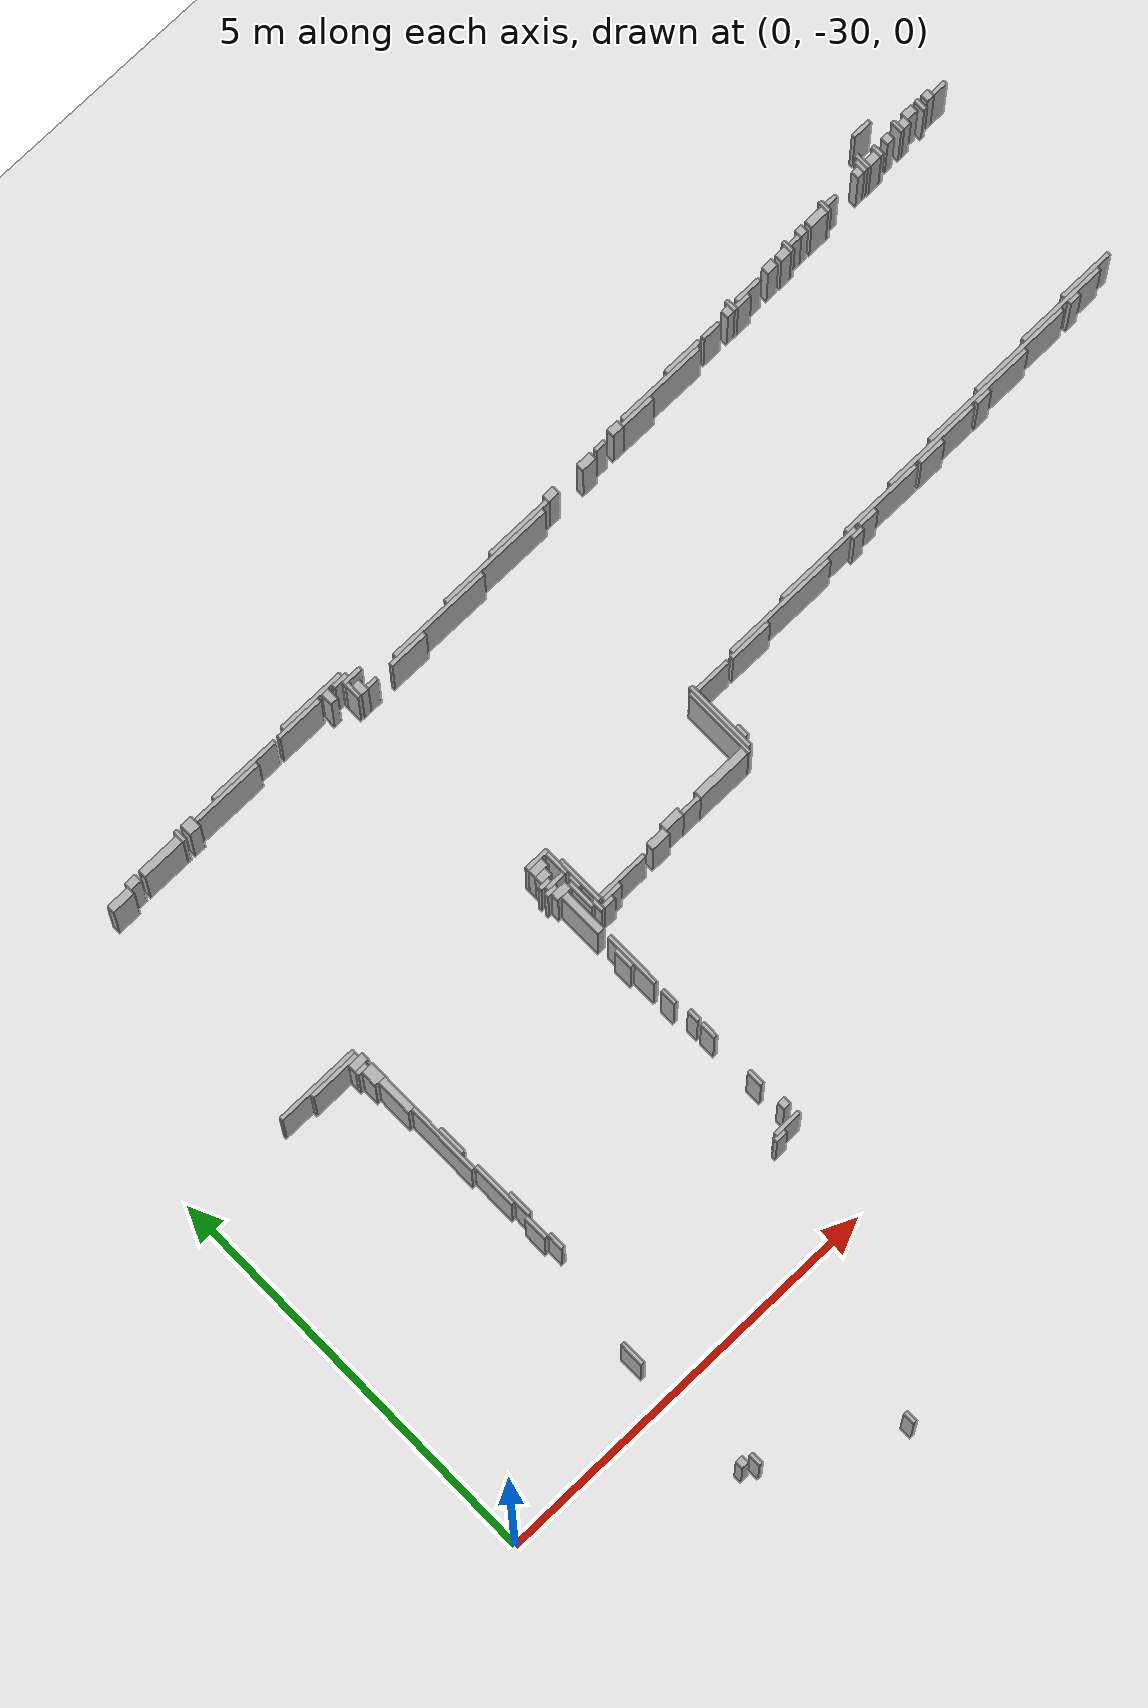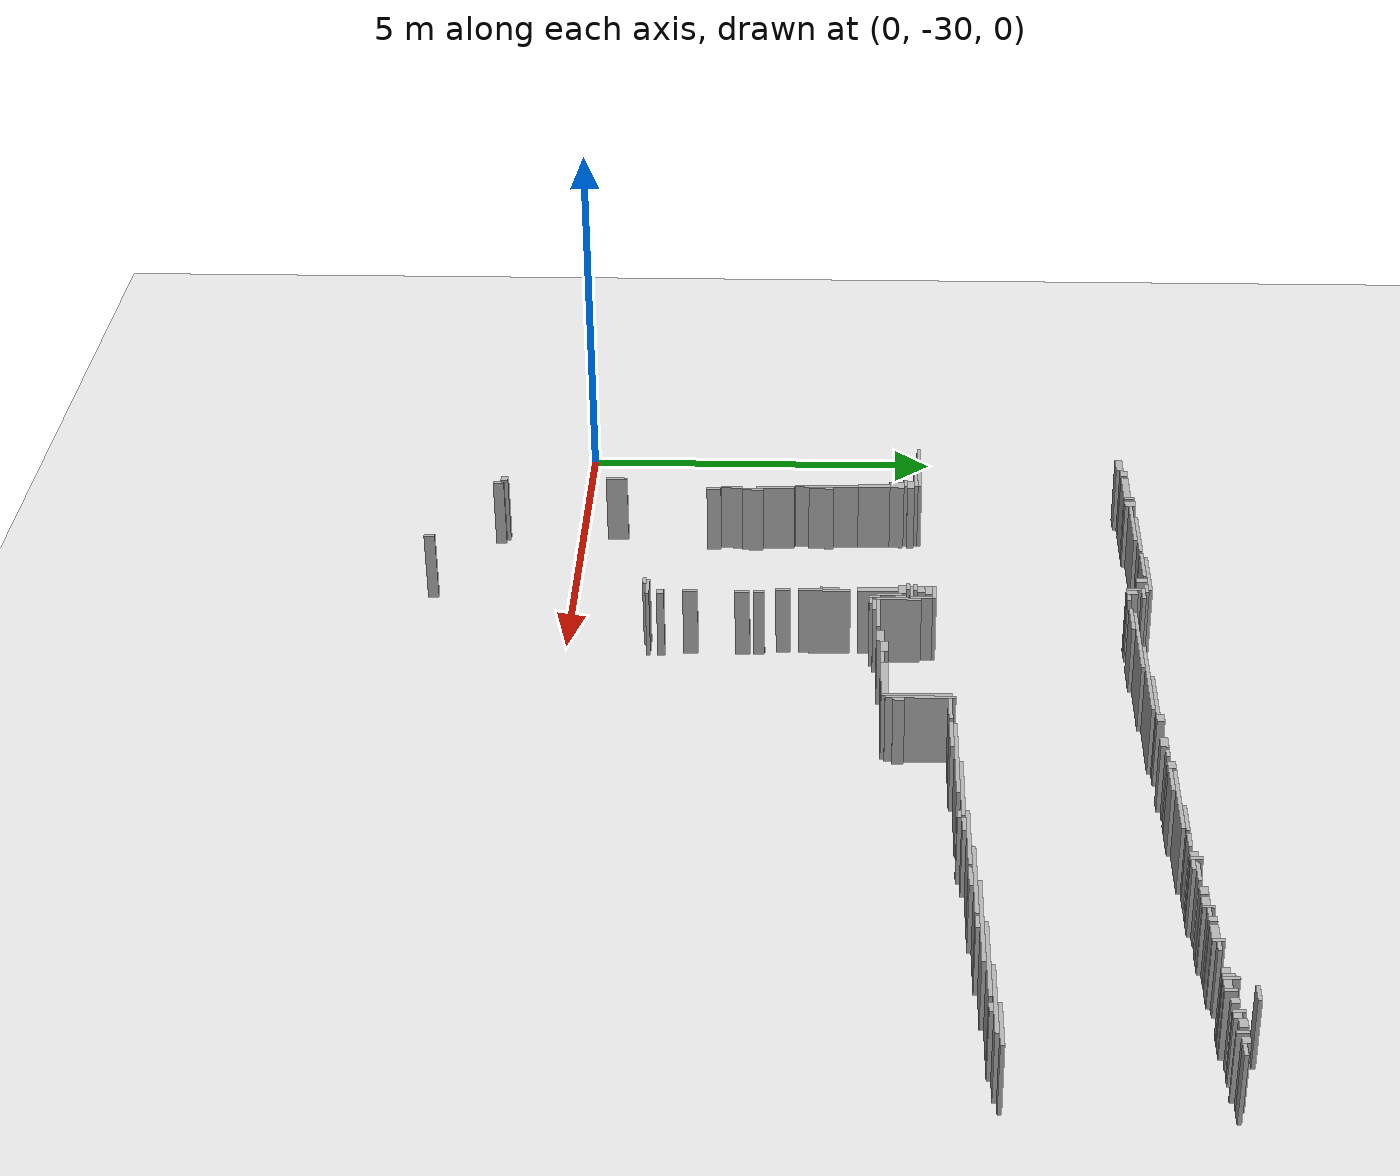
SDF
<sdf version="1.8">
 <world name="building">
  <model name="ground_plane">
   <static>true</static>
   <link name="link">
    <collision name="c"><geometry><plane><normal>0 0 1</normal><size>200 200</size></plane></geometry></collision>
    <visual name="v">
     <geometry><plane><normal>0 0 1</normal><size>200 200</size></plane></geometry>
     <material><ambient>0.9 0.9 0.9 1</ambient><diffuse>0.9 0.9 0.9 1</diffuse></material>
    </visual>
   </link>
  </model>
  <model name="walls">
   <static>true</static>
   <link name="wall_762">
    <pose>13.225 -21.625 0.500 0 0 0</pose>
    <collision name="c"><geometry><box><size>0.250 0.050 1.000</size></box></geometry></collision>
    <visual name="v">
     <geometry><box><size>0.250 0.050 1.000</size></box></geometry>
     <material><ambient>0.6 0.6 0.6 1</ambient><diffuse>0.7 0.7 0.7 1</diffuse></material>
    </visual>
   </link>
   <link name="wall_768">
    <pose>12.975 -21.900 0.500 0 0 0</pose>
    <collision name="c"><geometry><box><size>0.050 0.200 1.000</size></box></geometry></collision>
    <visual name="v">
     <geometry><box><size>0.050 0.200 1.000</size></box></geometry>
     <material><ambient>0.6 0.6 0.6 1</ambient><diffuse>0.7 0.7 0.7 1</diffuse></material>
    </visual>
   </link>
   <link name="wall_769">
    <pose>13.525 -21.875 0.500 0 0 0</pose>
    <collision name="c"><geometry><box><size>0.050 0.150 1.000</size></box></geometry></collision>
    <visual name="v">
     <geometry><box><size>0.050 0.150 1.000</size></box></geometry>
     <material><ambient>0.6 0.6 0.6 1</ambient><diffuse>0.7 0.7 0.7 1</diffuse></material>
    </visual>
   </link>
   <link name="wall_770">
    <pose>13.725 -21.850 0.500 0 0 0</pose>
    <collision name="c"><geometry><box><size>0.150 0.100 1.000</size></box></geometry></collision>
    <visual name="v">
     <geometry><box><size>0.150 0.100 1.000</size></box></geometry>
     <material><ambient>0.6 0.6 0.6 1</ambient><diffuse>0.7 0.7 0.7 1</diffuse></material>
    </visual>
   </link>
   <link name="wall_771">
    <pose>13.875 -21.875 0.500 0 0 0</pose>
    <collision name="c"><geometry><box><size>0.050 0.150 1.000</size></box></geometry></collision>
    <visual name="v">
     <geometry><box><size>0.050 0.150 1.000</size></box></geometry>
     <material><ambient>0.6 0.6 0.6 1</ambient><diffuse>0.7 0.7 0.7 1</diffuse></material>
    </visual>
   </link>
   <link name="wall_772">
    <pose>14.000 -21.850 0.500 0 0 0</pose>
    <collision name="c"><geometry><box><size>0.100 0.100 1.000</size></box></geometry></collision>
    <visual name="v">
     <geometry><box><size>0.100 0.100 1.000</size></box></geometry>
     <material><ambient>0.6 0.6 0.6 1</ambient><diffuse>0.7 0.7 0.7 1</diffuse></material>
    </visual>
   </link>
   <link name="wall_774">
    <pose>12.925 -21.925 0.500 0 0 0</pose>
    <collision name="c"><geometry><box><size>0.050 0.150 1.000</size></box></geometry></collision>
    <visual name="v">
     <geometry><box><size>0.050 0.150 1.000</size></box></geometry>
     <material><ambient>0.6 0.6 0.6 1</ambient><diffuse>0.7 0.7 0.7 1</diffuse></material>
    </visual>
   </link>
   <link name="wall_775">
    <pose>13.175 -21.925 0.500 0 0 0</pose>
    <collision name="c"><geometry><box><size>0.050 0.150 1.000</size></box></geometry></collision>
    <visual name="v">
     <geometry><box><size>0.050 0.150 1.000</size></box></geometry>
     <material><ambient>0.6 0.6 0.6 1</ambient><diffuse>0.7 0.7 0.7 1</diffuse></material>
    </visual>
   </link>
   <link name="wall_776">
    <pose>13.350 -21.900 0.500 0 0 0</pose>
    <collision name="c"><geometry><box><size>0.100 0.100 1.000</size></box></geometry></collision>
    <visual name="v">
     <geometry><box><size>0.100 0.100 1.000</size></box></geometry>
     <material><ambient>0.6 0.6 0.6 1</ambient><diffuse>0.7 0.7 0.7 1</diffuse></material>
    </visual>
   </link>
   <link name="wall_777">
    <pose>13.600 -21.900 0.500 0 0 0</pose>
    <collision name="c"><geometry><box><size>0.100 0.100 1.000</size></box></geometry></collision>
    <visual name="v">
     <geometry><box><size>0.100 0.100 1.000</size></box></geometry>
     <material><ambient>0.6 0.6 0.6 1</ambient><diffuse>0.7 0.7 0.7 1</diffuse></material>
    </visual>
   </link>
   <link name="wall_778">
    <pose>14.150 -21.875 0.500 0 0 0</pose>
    <collision name="c"><geometry><box><size>0.200 0.050 1.000</size></box></geometry></collision>
    <visual name="v">
     <geometry><box><size>0.200 0.050 1.000</size></box></geometry>
     <material><ambient>0.6 0.6 0.6 1</ambient><diffuse>0.7 0.7 0.7 1</diffuse></material>
    </visual>
   </link>
   <link name="wall_780">
    <pose>12.325 -21.975 0.500 0 0 0</pose>
    <collision name="c"><geometry><box><size>0.050 0.150 1.000</size></box></geometry></collision>
    <visual name="v">
     <geometry><box><size>0.050 0.150 1.000</size></box></geometry>
     <material><ambient>0.6 0.6 0.6 1</ambient><diffuse>0.7 0.7 0.7 1</diffuse></material>
    </visual>
   </link>
   <link name="wall_781">
    <pose>12.850 -21.950 0.500 0 0 0</pose>
    <collision name="c"><geometry><box><size>0.100 0.100 1.000</size></box></geometry></collision>
    <visual name="v">
     <geometry><box><size>0.100 0.100 1.000</size></box></geometry>
     <material><ambient>0.6 0.6 0.6 1</ambient><diffuse>0.7 0.7 0.7 1</diffuse></material>
    </visual>
   </link>
   <link name="wall_782">
    <pose>13.075 -21.950 0.500 0 0 0</pose>
    <collision name="c"><geometry><box><size>0.150 0.100 1.000</size></box></geometry></collision>
    <visual name="v">
     <geometry><box><size>0.150 0.100 1.000</size></box></geometry>
     <material><ambient>0.6 0.6 0.6 1</ambient><diffuse>0.7 0.7 0.7 1</diffuse></material>
    </visual>
   </link>
   <link name="wall_783">
    <pose>11.725 -22.025 0.500 0 0 0</pose>
    <collision name="c"><geometry><box><size>0.050 0.150 1.000</size></box></geometry></collision>
    <visual name="v">
     <geometry><box><size>0.050 0.150 1.000</size></box></geometry>
     <material><ambient>0.6 0.6 0.6 1</ambient><diffuse>0.7 0.7 0.7 1</diffuse></material>
    </visual>
   </link>
   <link name="wall_784">
    <pose>11.950 -22.000 0.500 0 0 0</pose>
    <collision name="c"><geometry><box><size>0.100 0.100 1.000</size></box></geometry></collision>
    <visual name="v">
     <geometry><box><size>0.100 0.100 1.000</size></box></geometry>
     <material><ambient>0.6 0.6 0.6 1</ambient><diffuse>0.7 0.7 0.7 1</diffuse></material>
    </visual>
   </link>
   <link name="wall_785">
    <pose>12.175 -22.000 0.500 0 0 0</pose>
    <collision name="c"><geometry><box><size>0.250 0.100 1.000</size></box></geometry></collision>
    <visual name="v">
     <geometry><box><size>0.250 0.100 1.000</size></box></geometry>
     <material><ambient>0.6 0.6 0.6 1</ambient><diffuse>0.7 0.7 0.7 1</diffuse></material>
    </visual>
   </link>
   <link name="wall_786">
    <pose>12.425 -21.975 0.500 0 0 0</pose>
    <collision name="c"><geometry><box><size>0.150 0.050 1.000</size></box></geometry></collision>
    <visual name="v">
     <geometry><box><size>0.150 0.050 1.000</size></box></geometry>
     <material><ambient>0.6 0.6 0.6 1</ambient><diffuse>0.7 0.7 0.7 1</diffuse></material>
    </visual>
   </link>
   <link name="wall_787">
    <pose>10.825 -22.075 0.500 0 0 0</pose>
    <collision name="c"><geometry><box><size>0.050 0.150 1.000</size></box></geometry></collision>
    <visual name="v">
     <geometry><box><size>0.050 0.150 1.000</size></box></geometry>
     <material><ambient>0.6 0.6 0.6 1</ambient><diffuse>0.7 0.7 0.7 1</diffuse></material>
    </visual>
   </link>
   <link name="wall_788">
    <pose>11.425 -22.050 0.500 0 0 0</pose>
    <collision name="c"><geometry><box><size>0.150 0.100 1.000</size></box></geometry></collision>
    <visual name="v">
     <geometry><box><size>0.150 0.100 1.000</size></box></geometry>
     <material><ambient>0.6 0.6 0.6 1</ambient><diffuse>0.7 0.7 0.7 1</diffuse></material>
    </visual>
   </link>
   <link name="wall_789">
    <pose>11.625 -22.050 0.500 0 0 0</pose>
    <collision name="c"><geometry><box><size>0.150 0.100 1.000</size></box></geometry></collision>
    <visual name="v">
     <geometry><box><size>0.150 0.100 1.000</size></box></geometry>
     <material><ambient>0.6 0.6 0.6 1</ambient><diffuse>0.7 0.7 0.7 1</diffuse></material>
    </visual>
   </link>
   <link name="wall_790">
    <pose>11.825 -22.025 0.500 0 0 0</pose>
    <collision name="c"><geometry><box><size>0.150 0.050 1.000</size></box></geometry></collision>
    <visual name="v">
     <geometry><box><size>0.150 0.050 1.000</size></box></geometry>
     <material><ambient>0.6 0.6 0.6 1</ambient><diffuse>0.7 0.7 0.7 1</diffuse></material>
    </visual>
   </link>
   <link name="wall_793">
    <pose>10.750 -22.100 0.500 0 0 0</pose>
    <collision name="c"><geometry><box><size>0.100 0.100 1.000</size></box></geometry></collision>
    <visual name="v">
     <geometry><box><size>0.100 0.100 1.000</size></box></geometry>
     <material><ambient>0.6 0.6 0.6 1</ambient><diffuse>0.7 0.7 0.7 1</diffuse></material>
    </visual>
   </link>
   <link name="wall_794">
    <pose>11.075 -22.075 0.500 0 0 0</pose>
    <collision name="c"><geometry><box><size>0.350 0.050 1.000</size></box></geometry></collision>
    <visual name="v">
     <geometry><box><size>0.350 0.050 1.000</size></box></geometry>
     <material><ambient>0.6 0.6 0.6 1</ambient><diffuse>0.7 0.7 0.7 1</diffuse></material>
    </visual>
   </link>
   <link name="wall_796">
    <pose>4.575 -22.125 0.500 0 0 0</pose>
    <collision name="c"><geometry><box><size>0.850 0.050 1.000</size></box></geometry></collision>
    <visual name="v">
     <geometry><box><size>0.850 0.050 1.000</size></box></geometry>
     <material><ambient>0.6 0.6 0.6 1</ambient><diffuse>0.7 0.7 0.7 1</diffuse></material>
    </visual>
   </link>
   <link name="wall_797">
    <pose>10.050 -22.125 0.500 0 0 0</pose>
    <collision name="c"><geometry><box><size>0.500 0.050 1.000</size></box></geometry></collision>
    <visual name="v">
     <geometry><box><size>0.500 0.050 1.000</size></box></geometry>
     <material><ambient>0.6 0.6 0.6 1</ambient><diffuse>0.7 0.7 0.7 1</diffuse></material>
    </visual>
   </link>
   <link name="wall_798">
    <pose>10.475 -22.125 0.500 0 0 0</pose>
    <collision name="c"><geometry><box><size>0.250 0.050 1.000</size></box></geometry></collision>
    <visual name="v">
     <geometry><box><size>0.250 0.050 1.000</size></box></geometry>
     <material><ambient>0.6 0.6 0.6 1</ambient><diffuse>0.7 0.7 0.7 1</diffuse></material>
    </visual>
   </link>
   <link name="wall_799">
    <pose>10.950 -22.125 0.500 0 0 0</pose>
    <collision name="c"><geometry><box><size>0.200 0.050 1.000</size></box></geometry></collision>
    <visual name="v">
     <geometry><box><size>0.200 0.050 1.000</size></box></geometry>
     <material><ambient>0.6 0.6 0.6 1</ambient><diffuse>0.7 0.7 0.7 1</diffuse></material>
    </visual>
   </link>
   <link name="wall_805">
    <pose>2.575 -22.225 0.500 0 0 0</pose>
    <collision name="c"><geometry><box><size>0.050 0.150 1.000</size></box></geometry></collision>
    <visual name="v">
     <geometry><box><size>0.050 0.150 1.000</size></box></geometry>
     <material><ambient>0.6 0.6 0.6 1</ambient><diffuse>0.7 0.7 0.7 1</diffuse></material>
    </visual>
   </link>
   <link name="wall_806">
    <pose>2.725 -22.225 0.500 0 0 0</pose>
    <collision name="c"><geometry><box><size>0.150 0.150 1.000</size></box></geometry></collision>
    <visual name="v">
     <geometry><box><size>0.150 0.150 1.000</size></box></geometry>
     <material><ambient>0.6 0.6 0.6 1</ambient><diffuse>0.7 0.7 0.7 1</diffuse></material>
    </visual>
   </link>
   <link name="wall_807">
    <pose>3.550 -22.175 0.500 0 0 0</pose>
    <collision name="c"><geometry><box><size>0.900 0.050 1.000</size></box></geometry></collision>
    <visual name="v">
     <geometry><box><size>0.900 0.050 1.000</size></box></geometry>
     <material><ambient>0.6 0.6 0.6 1</ambient><diffuse>0.7 0.7 0.7 1</diffuse></material>
    </visual>
   </link>
   <link name="wall_808">
    <pose>4.350 -22.175 0.500 0 0 0</pose>
    <collision name="c"><geometry><box><size>0.600 0.050 1.000</size></box></geometry></collision>
    <visual name="v">
     <geometry><box><size>0.600 0.050 1.000</size></box></geometry>
     <material><ambient>0.6 0.6 0.6 1</ambient><diffuse>0.7 0.7 0.7 1</diffuse></material>
    </visual>
   </link>
   <link name="wall_809">
    <pose>4.750 -22.225 0.500 0 0 0</pose>
    <collision name="c"><geometry><box><size>0.100 0.150 1.000</size></box></geometry></collision>
    <visual name="v">
     <geometry><box><size>0.100 0.150 1.000</size></box></geometry>
     <material><ambient>0.6 0.6 0.6 1</ambient><diffuse>0.7 0.7 0.7 1</diffuse></material>
    </visual>
   </link>
   <link name="wall_810">
    <pose>4.950 -22.175 0.500 0 0 0</pose>
    <collision name="c"><geometry><box><size>0.200 0.050 1.000</size></box></geometry></collision>
    <visual name="v">
     <geometry><box><size>0.200 0.050 1.000</size></box></geometry>
     <material><ambient>0.6 0.6 0.6 1</ambient><diffuse>0.7 0.7 0.7 1</diffuse></material>
    </visual>
   </link>
   <link name="wall_811">
    <pose>8.975 -22.200 0.500 0 0 0</pose>
    <collision name="c"><geometry><box><size>0.150 0.100 1.000</size></box></geometry></collision>
    <visual name="v">
     <geometry><box><size>0.150 0.100 1.000</size></box></geometry>
     <material><ambient>0.6 0.6 0.6 1</ambient><diffuse>0.7 0.7 0.7 1</diffuse></material>
    </visual>
   </link>
   <link name="wall_812">
    <pose>9.675 -22.175 0.500 0 0 0</pose>
    <collision name="c"><geometry><box><size>1.150 0.050 1.000</size></box></geometry></collision>
    <visual name="v">
     <geometry><box><size>1.150 0.050 1.000</size></box></geometry>
     <material><ambient>0.6 0.6 0.6 1</ambient><diffuse>0.7 0.7 0.7 1</diffuse></material>
    </visual>
   </link>
   <link name="wall_820">
    <pose>1.875 -22.250 0.500 0 0 0</pose>
    <collision name="c"><geometry><box><size>0.150 0.100 1.000</size></box></geometry></collision>
    <visual name="v">
     <geometry><box><size>0.150 0.100 1.000</size></box></geometry>
     <material><ambient>0.6 0.6 0.6 1</ambient><diffuse>0.7 0.7 0.7 1</diffuse></material>
    </visual>
   </link>
   <link name="wall_821">
    <pose>2.275 -22.250 0.500 0 0 0</pose>
    <collision name="c"><geometry><box><size>0.550 0.100 1.000</size></box></geometry></collision>
    <visual name="v">
     <geometry><box><size>0.550 0.100 1.000</size></box></geometry>
     <material><ambient>0.6 0.6 0.6 1</ambient><diffuse>0.7 0.7 0.7 1</diffuse></material>
    </visual>
   </link>
   <link name="wall_822">
    <pose>3.250 -22.225 0.500 0 0 0</pose>
    <collision name="c"><geometry><box><size>0.900 0.050 1.000</size></box></geometry></collision>
    <visual name="v">
     <geometry><box><size>0.900 0.050 1.000</size></box></geometry>
     <material><ambient>0.6 0.6 0.6 1</ambient><diffuse>0.7 0.7 0.7 1</diffuse></material>
    </visual>
   </link>
   <link name="wall_823">
    <pose>5.075 -22.225 0.500 0 0 0</pose>
    <collision name="c"><geometry><box><size>0.250 0.050 1.000</size></box></geometry></collision>
    <visual name="v">
     <geometry><box><size>0.250 0.050 1.000</size></box></geometry>
     <material><ambient>0.6 0.6 0.6 1</ambient><diffuse>0.7 0.7 0.7 1</diffuse></material>
    </visual>
   </link>
   <link name="wall_824">
    <pose>7.975 -22.250 0.500 0 0 0</pose>
    <collision name="c"><geometry><box><size>0.150 0.100 1.000</size></box></geometry></collision>
    <visual name="v">
     <geometry><box><size>0.150 0.100 1.000</size></box></geometry>
     <material><ambient>0.6 0.6 0.6 1</ambient><diffuse>0.7 0.7 0.7 1</diffuse></material>
    </visual>
   </link>
   <link name="wall_825">
    <pose>8.500 -22.250 0.500 0 0 0</pose>
    <collision name="c"><geometry><box><size>0.200 0.100 1.000</size></box></geometry></collision>
    <visual name="v">
     <geometry><box><size>0.200 0.100 1.000</size></box></geometry>
     <material><ambient>0.6 0.6 0.6 1</ambient><diffuse>0.7 0.7 0.7 1</diffuse></material>
    </visual>
   </link>
   <link name="wall_826">
    <pose>8.725 -22.225 0.500 0 0 0</pose>
    <collision name="c"><geometry><box><size>0.150 0.050 1.000</size></box></geometry></collision>
    <visual name="v">
     <geometry><box><size>0.150 0.050 1.000</size></box></geometry>
     <material><ambient>0.6 0.6 0.6 1</ambient><diffuse>0.7 0.7 0.7 1</diffuse></material>
    </visual>
   </link>
   <link name="wall_827">
    <pose>9.275 -22.225 0.500 0 0 0</pose>
    <collision name="c"><geometry><box><size>0.450 0.050 1.000</size></box></geometry></collision>
    <visual name="v">
     <geometry><box><size>0.450 0.050 1.000</size></box></geometry>
     <material><ambient>0.6 0.6 0.6 1</ambient><diffuse>0.7 0.7 0.7 1</diffuse></material>
    </visual>
   </link>
   <link name="wall_841">
    <pose>1.650 -22.300 0.500 0 0 0</pose>
    <collision name="c"><geometry><box><size>0.300 0.100 1.000</size></box></geometry></collision>
    <visual name="v">
     <geometry><box><size>0.300 0.100 1.000</size></box></geometry>
     <material><ambient>0.6 0.6 0.6 1</ambient><diffuse>0.7 0.7 0.7 1</diffuse></material>
    </visual>
   </link>
   <link name="wall_842">
    <pose>4.975 -22.350 0.500 0 0 0</pose>
    <collision name="c"><geometry><box><size>0.050 0.200 1.000</size></box></geometry></collision>
    <visual name="v">
     <geometry><box><size>0.050 0.200 1.000</size></box></geometry>
     <material><ambient>0.6 0.6 0.6 1</ambient><diffuse>0.7 0.7 0.7 1</diffuse></material>
    </visual>
   </link>
   <link name="wall_843">
    <pose>7.475 -22.275 0.500 0 0 0</pose>
    <collision name="c"><geometry><box><size>0.850 0.050 1.000</size></box></geometry></collision>
    <visual name="v">
     <geometry><box><size>0.850 0.050 1.000</size></box></geometry>
     <material><ambient>0.6 0.6 0.6 1</ambient><diffuse>0.7 0.7 0.7 1</diffuse></material>
    </visual>
   </link>
   <link name="wall_858">
    <pose>5.050 -22.375 0.500 0 0 0</pose>
    <collision name="c"><geometry><box><size>0.100 0.150 1.000</size></box></geometry></collision>
    <visual name="v">
     <geometry><box><size>0.100 0.150 1.000</size></box></geometry>
     <material><ambient>0.6 0.6 0.6 1</ambient><diffuse>0.7 0.7 0.7 1</diffuse></material>
    </visual>
   </link>
   <link name="wall_859">
    <pose>7.075 -22.325 0.500 0 0 0</pose>
    <collision name="c"><geometry><box><size>1.450 0.050 1.000</size></box></geometry></collision>
    <visual name="v">
     <geometry><box><size>1.450 0.050 1.000</size></box></geometry>
     <material><ambient>0.6 0.6 0.6 1</ambient><diffuse>0.7 0.7 0.7 1</diffuse></material>
    </visual>
   </link>
   <link name="wall_874">
    <pose>6.200 -22.375 0.500 0 0 0</pose>
    <collision name="c"><geometry><box><size>1.300 0.050 1.000</size></box></geometry></collision>
    <visual name="v">
     <geometry><box><size>1.300 0.050 1.000</size></box></geometry>
     <material><ambient>0.6 0.6 0.6 1</ambient><diffuse>0.7 0.7 0.7 1</diffuse></material>
    </visual>
   </link>
   <link name="wall_885">
    <pose>5.175 -22.425 0.500 0 0 0</pose>
    <collision name="c"><geometry><box><size>0.150 0.050 1.000</size></box></geometry></collision>
    <visual name="v">
     <geometry><box><size>0.150 0.050 1.000</size></box></geometry>
     <material><ambient>0.6 0.6 0.6 1</ambient><diffuse>0.7 0.7 0.7 1</diffuse></material>
    </visual>
   </link>
   <link name="wall_886">
    <pose>5.700 -22.425 0.500 0 0 0</pose>
    <collision name="c"><geometry><box><size>0.500 0.050 1.000</size></box></geometry></collision>
    <visual name="v">
     <geometry><box><size>0.500 0.050 1.000</size></box></geometry>
     <material><ambient>0.6 0.6 0.6 1</ambient><diffuse>0.7 0.7 0.7 1</diffuse></material>
    </visual>
   </link>
   <link name="wall_956">
    <pose>13.800 -24.475 0.500 0 0 0</pose>
    <collision name="c"><geometry><box><size>0.700 0.050 1.000</size></box></geometry></collision>
    <visual name="v">
     <geometry><box><size>0.700 0.050 1.000</size></box></geometry>
     <material><ambient>0.6 0.6 0.6 1</ambient><diffuse>0.7 0.7 0.7 1</diffuse></material>
    </visual>
   </link>
   <link name="wall_964">
    <pose>13.375 -24.525 0.500 0 0 0</pose>
    <collision name="c"><geometry><box><size>1.150 0.050 1.000</size></box></geometry></collision>
    <visual name="v">
     <geometry><box><size>1.150 0.050 1.000</size></box></geometry>
     <material><ambient>0.6 0.6 0.6 1</ambient><diffuse>0.7 0.7 0.7 1</diffuse></material>
    </visual>
   </link>
   <link name="wall_980">
    <pose>12.700 -24.575 0.500 0 0 0</pose>
    <collision name="c"><geometry><box><size>1.300 0.050 1.000</size></box></geometry></collision>
    <visual name="v">
     <geometry><box><size>1.300 0.050 1.000</size></box></geometry>
     <material><ambient>0.6 0.6 0.6 1</ambient><diffuse>0.7 0.7 0.7 1</diffuse></material>
    </visual>
   </link>
   <link name="wall_981">
    <pose>13.525 -24.575 0.500 0 0 0</pose>
    <collision name="c"><geometry><box><size>0.150 0.050 1.000</size></box></geometry></collision>
    <visual name="v">
     <geometry><box><size>0.150 0.050 1.000</size></box></geometry>
     <material><ambient>0.6 0.6 0.6 1</ambient><diffuse>0.7 0.7 0.7 1</diffuse></material>
    </visual>
   </link>
   <link name="wall_990">
    <pose>12.025 -24.625 0.500 0 0 0</pose>
    <collision name="c"><geometry><box><size>1.450 0.050 1.000</size></box></geometry></collision>
    <visual name="v">
     <geometry><box><size>1.450 0.050 1.000</size></box></geometry>
     <material><ambient>0.6 0.6 0.6 1</ambient><diffuse>0.7 0.7 0.7 1</diffuse></material>
    </visual>
   </link>
   <link name="wall_1001">
    <pose>11.275 -24.675 0.500 0 0 0</pose>
    <collision name="c"><geometry><box><size>1.250 0.050 1.000</size></box></geometry></collision>
    <visual name="v">
     <geometry><box><size>1.250 0.050 1.000</size></box></geometry>
     <material><ambient>0.6 0.6 0.6 1</ambient><diffuse>0.7 0.7 0.7 1</diffuse></material>
    </visual>
   </link>
   <link name="wall_1002">
    <pose>12.050 -24.675 0.500 0 0 0</pose>
    <collision name="c"><geometry><box><size>0.200 0.050 1.000</size></box></geometry></collision>
    <visual name="v">
     <geometry><box><size>0.200 0.050 1.000</size></box></geometry>
     <material><ambient>0.6 0.6 0.6 1</ambient><diffuse>0.7 0.7 0.7 1</diffuse></material>
    </visual>
   </link>
   <link name="wall_1008">
    <pose>10.475 -24.725 0.500 0 0 0</pose>
    <collision name="c"><geometry><box><size>1.050 0.050 1.000</size></box></geometry></collision>
    <visual name="v">
     <geometry><box><size>1.050 0.050 1.000</size></box></geometry>
     <material><ambient>0.6 0.6 0.6 1</ambient><diffuse>0.7 0.7 0.7 1</diffuse></material>
    </visual>
   </link>
   <link name="wall_1009">
    <pose>11.225 -24.725 0.500 0 0 0</pose>
    <collision name="c"><geometry><box><size>0.350 0.050 1.000</size></box></geometry></collision>
    <visual name="v">
     <geometry><box><size>0.350 0.050 1.000</size></box></geometry>
     <material><ambient>0.6 0.6 0.6 1</ambient><diffuse>0.7 0.7 0.7 1</diffuse></material>
    </visual>
   </link>
   <link name="wall_1012">
    <pose>9.500 -24.775 0.500 0 0 0</pose>
    <collision name="c"><geometry><box><size>1.100 0.050 1.000</size></box></geometry></collision>
    <visual name="v">
     <geometry><box><size>1.100 0.050 1.000</size></box></geometry>
     <material><ambient>0.6 0.6 0.6 1</ambient><diffuse>0.7 0.7 0.7 1</diffuse></material>
    </visual>
   </link>
   <link name="wall_1013">
    <pose>10.225 -24.775 0.500 0 0 0</pose>
    <collision name="c"><geometry><box><size>0.250 0.050 1.000</size></box></geometry></collision>
    <visual name="v">
     <geometry><box><size>0.250 0.050 1.000</size></box></geometry>
     <material><ambient>0.6 0.6 0.6 1</ambient><diffuse>0.7 0.7 0.7 1</diffuse></material>
    </visual>
   </link>
   <link name="wall_1014">
    <pose>7.575 -25.250 0.500 0 0 0</pose>
    <collision name="c"><geometry><box><size>0.050 0.900 1.000</size></box></geometry></collision>
    <visual name="v">
     <geometry><box><size>0.050 0.900 1.000</size></box></geometry>
     <material><ambient>0.6 0.6 0.6 1</ambient><diffuse>0.7 0.7 0.7 1</diffuse></material>
    </visual>
   </link>
   <link name="wall_1015">
    <pose>8.875 -24.825 0.500 0 0 0</pose>
    <collision name="c"><geometry><box><size>1.450 0.050 1.000</size></box></geometry></collision>
    <visual name="v">
     <geometry><box><size>1.450 0.050 1.000</size></box></geometry>
     <material><ambient>0.6 0.6 0.6 1</ambient><diffuse>0.7 0.7 0.7 1</diffuse></material>
    </visual>
   </link>
   <link name="wall_1016">
    <pose>10.025 -24.825 0.500 0 0 0</pose>
    <collision name="c"><geometry><box><size>0.150 0.050 1.000</size></box></geometry></collision>
    <visual name="v">
     <geometry><box><size>0.150 0.050 1.000</size></box></geometry>
     <material><ambient>0.6 0.6 0.6 1</ambient><diffuse>0.7 0.7 0.7 1</diffuse></material>
    </visual>
   </link>
   <link name="wall_1019">
    <pose>7.525 -25.300 0.500 0 0 0</pose>
    <collision name="c"><geometry><box><size>0.050 0.900 1.000</size></box></geometry></collision>
    <visual name="v">
     <geometry><box><size>0.050 0.900 1.000</size></box></geometry>
     <material><ambient>0.6 0.6 0.6 1</ambient><diffuse>0.7 0.7 0.7 1</diffuse></material>
    </visual>
   </link>
   <link name="wall_1020">
    <pose>7.825 -24.875 0.500 0 0 0</pose>
    <collision name="c"><geometry><box><size>0.450 0.050 1.000</size></box></geometry></collision>
    <visual name="v">
     <geometry><box><size>0.450 0.050 1.000</size></box></geometry>
     <material><ambient>0.6 0.6 0.6 1</ambient><diffuse>0.7 0.7 0.7 1</diffuse></material>
    </visual>
   </link>
   <link name="wall_1021">
    <pose>8.375 -24.875 0.500 0 0 0</pose>
    <collision name="c"><geometry><box><size>0.550 0.050 1.000</size></box></geometry></collision>
    <visual name="v">
     <geometry><box><size>0.550 0.050 1.000</size></box></geometry>
     <material><ambient>0.6 0.6 0.6 1</ambient><diffuse>0.7 0.7 0.7 1</diffuse></material>
    </visual>
   </link>
   <link name="wall_1027">
    <pose>5.100 -25.025 0.500 0 0 0</pose>
    <collision name="c"><geometry><box><size>0.300 0.050 1.000</size></box></geometry></collision>
    <visual name="v">
     <geometry><box><size>0.300 0.050 1.000</size></box></geometry>
     <material><ambient>0.6 0.6 0.6 1</ambient><diffuse>0.7 0.7 0.7 1</diffuse></material>
    </visual>
   </link>
   <link name="wall_1029">
    <pose>5.050 -25.100 0.500 0 0 0</pose>
    <collision name="c"><geometry><box><size>0.200 0.100 1.000</size></box></geometry></collision>
    <visual name="v">
     <geometry><box><size>0.200 0.100 1.000</size></box></geometry>
     <material><ambient>0.6 0.6 0.6 1</ambient><diffuse>0.7 0.7 0.7 1</diffuse></material>
    </visual>
   </link>
   <link name="wall_1030">
    <pose>5.225 -25.200 0.500 0 0 0</pose>
    <collision name="c"><geometry><box><size>0.050 0.300 1.000</size></box></geometry></collision>
    <visual name="v">
     <geometry><box><size>0.050 0.300 1.000</size></box></geometry>
     <material><ambient>0.6 0.6 0.6 1</ambient><diffuse>0.7 0.7 0.7 1</diffuse></material>
    </visual>
   </link>
   <link name="wall_1034">
    <pose>1.775 -25.175 0.500 0 0 0</pose>
    <collision name="c"><geometry><box><size>1.050 0.050 1.000</size></box></geometry></collision>
    <visual name="v">
     <geometry><box><size>1.050 0.050 1.000</size></box></geometry>
     <material><ambient>0.6 0.6 0.6 1</ambient><diffuse>0.7 0.7 0.7 1</diffuse></material>
    </visual>
   </link>
   <link name="wall_1035">
    <pose>5.025 -25.200 0.500 0 0 0</pose>
    <collision name="c"><geometry><box><size>0.150 0.100 1.000</size></box></geometry></collision>
    <visual name="v">
     <geometry><box><size>0.150 0.100 1.000</size></box></geometry>
     <material><ambient>0.6 0.6 0.6 1</ambient><diffuse>0.7 0.7 0.7 1</diffuse></material>
    </visual>
   </link>
   <link name="wall_1039">
    <pose>1.975 -25.225 0.500 0 0 0</pose>
    <collision name="c"><geometry><box><size>0.650 0.050 1.000</size></box></geometry></collision>
    <visual name="v">
     <geometry><box><size>0.650 0.050 1.000</size></box></geometry>
     <material><ambient>0.6 0.6 0.6 1</ambient><diffuse>0.7 0.7 0.7 1</diffuse></material>
    </visual>
   </link>
   <link name="wall_1040">
    <pose>5.275 -25.500 0.500 0 0 0</pose>
    <collision name="c"><geometry><box><size>0.050 0.600 1.000</size></box></geometry></collision>
    <visual name="v">
     <geometry><box><size>0.050 0.600 1.000</size></box></geometry>
     <material><ambient>0.6 0.6 0.6 1</ambient><diffuse>0.7 0.7 0.7 1</diffuse></material>
    </visual>
   </link>
   <link name="wall_1045">
    <pose>2.250 -25.300 0.500 0 0 0</pose>
    <collision name="c"><geometry><box><size>0.200 0.100 1.000</size></box></geometry></collision>
    <visual name="v">
     <geometry><box><size>0.200 0.100 1.000</size></box></geometry>
     <material><ambient>0.6 0.6 0.6 1</ambient><diffuse>0.7 0.7 0.7 1</diffuse></material>
    </visual>
   </link>
   <link name="wall_1046">
    <pose>4.975 -25.275 0.500 0 0 0</pose>
    <collision name="c"><geometry><box><size>0.150 0.050 1.000</size></box></geometry></collision>
    <visual name="v">
     <geometry><box><size>0.150 0.050 1.000</size></box></geometry>
     <material><ambient>0.6 0.6 0.6 1</ambient><diffuse>0.7 0.7 0.7 1</diffuse></material>
    </visual>
   </link>
   <link name="wall_1050">
    <pose>5.075 -25.325 0.500 0 0 0</pose>
    <collision name="c"><geometry><box><size>0.250 0.050 1.000</size></box></geometry></collision>
    <visual name="v">
     <geometry><box><size>0.250 0.050 1.000</size></box></geometry>
     <material><ambient>0.6 0.6 0.6 1</ambient><diffuse>0.7 0.7 0.7 1</diffuse></material>
    </visual>
   </link>
   <link name="wall_1054">
    <pose>2.225 -25.375 0.500 0 0 0</pose>
    <collision name="c"><geometry><box><size>0.150 0.050 1.000</size></box></geometry></collision>
    <visual name="v">
     <geometry><box><size>0.150 0.050 1.000</size></box></geometry>
     <material><ambient>0.6 0.6 0.6 1</ambient><diffuse>0.7 0.7 0.7 1</diffuse></material>
    </visual>
   </link>
   <link name="wall_1055">
    <pose>4.975 -25.375 0.500 0 0 0</pose>
    <collision name="c"><geometry><box><size>0.150 0.050 1.000</size></box></geometry></collision>
    <visual name="v">
     <geometry><box><size>0.150 0.050 1.000</size></box></geometry>
     <material><ambient>0.6 0.6 0.6 1</ambient><diffuse>0.7 0.7 0.7 1</diffuse></material>
    </visual>
   </link>
   <link name="wall_1058">
    <pose>2.275 -25.500 0.500 0 0 0</pose>
    <collision name="c"><geometry><box><size>0.150 0.200 1.000</size></box></geometry></collision>
    <visual name="v">
     <geometry><box><size>0.150 0.200 1.000</size></box></geometry>
     <material><ambient>0.6 0.6 0.6 1</ambient><diffuse>0.7 0.7 0.7 1</diffuse></material>
    </visual>
   </link>
   <link name="wall_1059">
    <pose>5.050 -25.450 0.500 0 0 0</pose>
    <collision name="c"><geometry><box><size>0.200 0.100 1.000</size></box></geometry></collision>
    <visual name="v">
     <geometry><box><size>0.200 0.100 1.000</size></box></geometry>
     <material><ambient>0.6 0.6 0.6 1</ambient><diffuse>0.7 0.7 0.7 1</diffuse></material>
    </visual>
   </link>
   <link name="wall_1060">
    <pose>5.225 -25.475 0.500 0 0 0</pose>
    <collision name="c"><geometry><box><size>0.050 0.150 1.000</size></box></geometry></collision>
    <visual name="v">
     <geometry><box><size>0.050 0.150 1.000</size></box></geometry>
     <material><ambient>0.6 0.6 0.6 1</ambient><diffuse>0.7 0.7 0.7 1</diffuse></material>
    </visual>
   </link>
   <link name="wall_1064">
    <pose>5.175 -25.625 0.500 0 0 0</pose>
    <collision name="c"><geometry><box><size>0.050 0.350 1.000</size></box></geometry></collision>
    <visual name="v">
     <geometry><box><size>0.050 0.350 1.000</size></box></geometry>
     <material><ambient>0.6 0.6 0.6 1</ambient><diffuse>0.7 0.7 0.7 1</diffuse></material>
    </visual>
   </link>
   <link name="wall_1065">
    <pose>7.625 -25.525 0.500 0 0 0</pose>
    <collision name="c"><geometry><box><size>0.050 0.150 1.000</size></box></geometry></collision>
    <visual name="v">
     <geometry><box><size>0.050 0.150 1.000</size></box></geometry>
     <material><ambient>0.6 0.6 0.6 1</ambient><diffuse>0.7 0.7 0.7 1</diffuse></material>
    </visual>
   </link>
   <link name="wall_1069">
    <pose>5.050 -25.775 0.500 0 0 0</pose>
    <collision name="c"><geometry><box><size>0.100 0.550 1.000</size></box></geometry></collision>
    <visual name="v">
     <geometry><box><size>0.100 0.550 1.000</size></box></geometry>
     <material><ambient>0.6 0.6 0.6 1</ambient><diffuse>0.7 0.7 0.7 1</diffuse></material>
    </visual>
   </link>
   <link name="wall_1076">
    <pose>2.300 -25.825 0.500 0 0 0</pose>
    <collision name="c"><geometry><box><size>0.100 0.450 1.000</size></box></geometry></collision>
    <visual name="v">
     <geometry><box><size>0.100 0.450 1.000</size></box></geometry>
     <material><ambient>0.6 0.6 0.6 1</ambient><diffuse>0.7 0.7 0.7 1</diffuse></material>
    </visual>
   </link>
   <link name="wall_1077">
    <pose>6.425 -25.700 0.500 0 0 0</pose>
    <collision name="c"><geometry><box><size>0.250 0.100 1.000</size></box></geometry></collision>
    <visual name="v">
     <geometry><box><size>0.250 0.100 1.000</size></box></geometry>
     <material><ambient>0.6 0.6 0.6 1</ambient><diffuse>0.7 0.7 0.7 1</diffuse></material>
    </visual>
   </link>
   <link name="wall_1078">
    <pose>7.150 -25.700 0.500 0 0 0</pose>
    <collision name="c"><geometry><box><size>0.700 0.100 1.000</size></box></geometry></collision>
    <visual name="v">
     <geometry><box><size>0.700 0.100 1.000</size></box></geometry>
     <material><ambient>0.6 0.6 0.6 1</ambient><diffuse>0.7 0.7 0.7 1</diffuse></material>
    </visual>
   </link>
   <link name="wall_1080">
    <pose>6.175 -25.750 0.500 0 0 0</pose>
    <collision name="c"><geometry><box><size>0.250 0.100 1.000</size></box></geometry></collision>
    <visual name="v">
     <geometry><box><size>0.250 0.100 1.000</size></box></geometry>
     <material><ambient>0.6 0.6 0.6 1</ambient><diffuse>0.7 0.7 0.7 1</diffuse></material>
    </visual>
   </link>
   <link name="wall_1081">
    <pose>6.675 -25.725 0.500 0 0 0</pose>
    <collision name="c"><geometry><box><size>0.250 0.050 1.000</size></box></geometry></collision>
    <visual name="v">
     <geometry><box><size>0.250 0.050 1.000</size></box></geometry>
     <material><ambient>0.6 0.6 0.6 1</ambient><diffuse>0.7 0.7 0.7 1</diffuse></material>
    </visual>
   </link>
   <link name="wall_1083">
    <pose>5.225 -25.825 0.500 0 0 0</pose>
    <collision name="c"><geometry><box><size>0.050 0.150 1.000</size></box></geometry></collision>
    <visual name="v">
     <geometry><box><size>0.050 0.150 1.000</size></box></geometry>
     <material><ambient>0.6 0.6 0.6 1</ambient><diffuse>0.7 0.7 0.7 1</diffuse></material>
    </visual>
   </link>
   <link name="wall_1084">
    <pose>5.625 -25.775 0.500 0 0 0</pose>
    <collision name="c"><geometry><box><size>0.650 0.050 1.000</size></box></geometry></collision>
    <visual name="v">
     <geometry><box><size>0.650 0.050 1.000</size></box></geometry>
     <material><ambient>0.6 0.6 0.6 1</ambient><diffuse>0.7 0.7 0.7 1</diffuse></material>
    </visual>
   </link>
   <link name="wall_1085">
    <pose>5.425 -25.825 0.500 0 0 0</pose>
    <collision name="c"><geometry><box><size>0.250 0.050 1.000</size></box></geometry></collision>
    <visual name="v">
     <geometry><box><size>0.250 0.050 1.000</size></box></geometry>
     <material><ambient>0.6 0.6 0.6 1</ambient><diffuse>0.7 0.7 0.7 1</diffuse></material>
    </visual>
   </link>
   <link name="wall_1087">
    <pose>5.325 -25.875 0.500 0 0 0</pose>
    <collision name="c"><geometry><box><size>0.150 0.050 1.000</size></box></geometry></collision>
    <visual name="v">
     <geometry><box><size>0.150 0.050 1.000</size></box></geometry>
     <material><ambient>0.6 0.6 0.6 1</ambient><diffuse>0.7 0.7 0.7 1</diffuse></material>
    </visual>
   </link>
   <link name="wall_1099">
    <pose>2.325 -26.500 0.500 0 0 0</pose>
    <collision name="c"><geometry><box><size>0.050 0.900 1.000</size></box></geometry></collision>
    <visual name="v">
     <geometry><box><size>0.050 0.900 1.000</size></box></geometry>
     <material><ambient>0.6 0.6 0.6 1</ambient><diffuse>0.7 0.7 0.7 1</diffuse></material>
    </visual>
   </link>
   <link name="wall_1112">
    <pose>5.075 -26.500 0.500 0 0 0</pose>
    <collision name="c"><geometry><box><size>0.050 0.700 1.000</size></box></geometry></collision>
    <visual name="v">
     <geometry><box><size>0.050 0.700 1.000</size></box></geometry>
     <material><ambient>0.6 0.6 0.6 1</ambient><diffuse>0.7 0.7 0.7 1</diffuse></material>
    </visual>
   </link>
   <link name="wall_1114">
    <pose>5.025 -26.425 0.500 0 0 0</pose>
    <collision name="c"><geometry><box><size>0.050 0.250 1.000</size></box></geometry></collision>
    <visual name="v">
     <geometry><box><size>0.050 0.250 1.000</size></box></geometry>
     <material><ambient>0.6 0.6 0.6 1</ambient><diffuse>0.7 0.7 0.7 1</diffuse></material>
    </visual>
   </link>
   <link name="wall_1115">
    <pose>2.375 -26.575 0.500 0 0 0</pose>
    <collision name="c"><geometry><box><size>0.050 0.350 1.000</size></box></geometry></collision>
    <visual name="v">
     <geometry><box><size>0.050 0.350 1.000</size></box></geometry>
     <material><ambient>0.6 0.6 0.6 1</ambient><diffuse>0.7 0.7 0.7 1</diffuse></material>
    </visual>
   </link>
   <link name="wall_1123">
    <pose>2.375 -27.225 0.500 0 0 0</pose>
    <collision name="c"><geometry><box><size>0.050 0.550 1.000</size></box></geometry></collision>
    <visual name="v">
     <geometry><box><size>0.050 0.550 1.000</size></box></geometry>
     <material><ambient>0.6 0.6 0.6 1</ambient><diffuse>0.7 0.7 0.7 1</diffuse></material>
    </visual>
   </link>
   <link name="wall_1124">
    <pose>5.075 -27.050 0.500 0 0 0</pose>
    <collision name="c"><geometry><box><size>0.050 0.200 1.000</size></box></geometry></collision>
    <visual name="v">
     <geometry><box><size>0.050 0.200 1.000</size></box></geometry>
     <material><ambient>0.6 0.6 0.6 1</ambient><diffuse>0.7 0.7 0.7 1</diffuse></material>
    </visual>
   </link>
   <link name="wall_1127">
    <pose>5.125 -27.375 0.500 0 0 0</pose>
    <collision name="c"><geometry><box><size>0.050 0.150 1.000</size></box></geometry></collision>
    <visual name="v">
     <geometry><box><size>0.050 0.150 1.000</size></box></geometry>
     <material><ambient>0.6 0.6 0.6 1</ambient><diffuse>0.7 0.7 0.7 1</diffuse></material>
    </visual>
   </link>
   <link name="wall_1128">
    <pose>2.425 -27.550 0.500 0 0 0</pose>
    <collision name="c"><geometry><box><size>0.050 0.300 1.000</size></box></geometry></collision>
    <visual name="v">
     <geometry><box><size>0.050 0.300 1.000</size></box></geometry>
     <material><ambient>0.6 0.6 0.6 1</ambient><diffuse>0.7 0.7 0.7 1</diffuse></material>
    </visual>
   </link>
   <link name="wall_1129">
    <pose>5.125 -27.600 0.500 0 0 0</pose>
    <collision name="c"><geometry><box><size>0.050 0.200 1.000</size></box></geometry></collision>
    <visual name="v">
     <geometry><box><size>0.050 0.200 1.000</size></box></geometry>
     <material><ambient>0.6 0.6 0.6 1</ambient><diffuse>0.7 0.7 0.7 1</diffuse></material>
    </visual>
   </link>
   <link name="wall_1130">
    <pose>2.375 -27.850 0.500 0 0 0</pose>
    <collision name="c"><geometry><box><size>0.050 0.300 1.000</size></box></geometry></collision>
    <visual name="v">
     <geometry><box><size>0.050 0.300 1.000</size></box></geometry>
     <material><ambient>0.6 0.6 0.6 1</ambient><diffuse>0.7 0.7 0.7 1</diffuse></material>
    </visual>
   </link>
   <link name="wall_1134">
    <pose>2.425 -28.100 0.500 0 0 0</pose>
    <collision name="c"><geometry><box><size>0.050 0.200 1.000</size></box></geometry></collision>
    <visual name="v">
     <geometry><box><size>0.050 0.200 1.000</size></box></geometry>
     <material><ambient>0.6 0.6 0.6 1</ambient><diffuse>0.7 0.7 0.7 1</diffuse></material>
    </visual>
   </link>
   <link name="wall_1135">
    <pose>5.125 -28.300 0.500 0 0 0</pose>
    <collision name="c"><geometry><box><size>0.050 0.200 1.000</size></box></geometry></collision>
    <visual name="v">
     <geometry><box><size>0.050 0.200 1.000</size></box></geometry>
     <material><ambient>0.6 0.6 0.6 1</ambient><diffuse>0.7 0.7 0.7 1</diffuse></material>
    </visual>
   </link>
   <link name="wall_1136">
    <pose>5.150 -28.700 0.500 0 0 0</pose>
    <collision name="c"><geometry><box><size>0.100 0.100 1.000</size></box></geometry></collision>
    <visual name="v">
     <geometry><box><size>0.100 0.100 1.000</size></box></geometry>
     <material><ambient>0.6 0.6 0.6 1</ambient><diffuse>0.7 0.7 0.7 1</diffuse></material>
    </visual>
   </link>
   <link name="wall_1137">
    <pose>5.025 -28.875 0.500 0 0 0</pose>
    <collision name="c"><geometry><box><size>0.350 0.050 1.000</size></box></geometry></collision>
    <visual name="v">
     <geometry><box><size>0.350 0.050 1.000</size></box></geometry>
     <material><ambient>0.6 0.6 0.6 1</ambient><diffuse>0.7 0.7 0.7 1</diffuse></material>
    </visual>
   </link>
   <link name="wall_1138">
    <pose>4.875 -28.925 0.500 0 0 0</pose>
    <collision name="c"><geometry><box><size>0.150 0.050 1.000</size></box></geometry></collision>
    <visual name="v">
     <geometry><box><size>0.150 0.050 1.000</size></box></geometry>
     <material><ambient>0.6 0.6 0.6 1</ambient><diffuse>0.7 0.7 0.7 1</diffuse></material>
    </visual>
   </link>
   <link name="wall_1139">
    <pose>2.175 -29.500 0.500 0 0 0</pose>
    <collision name="c"><geometry><box><size>0.050 0.300 1.000</size></box></geometry></collision>
    <visual name="v">
     <geometry><box><size>0.050 0.300 1.000</size></box></geometry>
     <material><ambient>0.6 0.6 0.6 1</ambient><diffuse>0.7 0.7 0.7 1</diffuse></material>
    </visual>
   </link>
   <link name="wall_1140">
    <pose>2.200 -31.100 0.500 0 0 0</pose>
    <collision name="c"><geometry><box><size>0.100 0.100 1.000</size></box></geometry></collision>
    <visual name="v">
     <geometry><box><size>0.100 0.100 1.000</size></box></geometry>
     <material><ambient>0.6 0.6 0.6 1</ambient><diffuse>0.7 0.7 0.7 1</diffuse></material>
    </visual>
   </link>
   <link name="wall_1141">
    <pose>2.325 -31.175 0.500 0 0 0</pose>
    <collision name="c"><geometry><box><size>0.050 0.150 1.000</size></box></geometry></collision>
    <visual name="v">
     <geometry><box><size>0.050 0.150 1.000</size></box></geometry>
     <material><ambient>0.6 0.6 0.6 1</ambient><diffuse>0.7 0.7 0.7 1</diffuse></material>
    </visual>
   </link>
   <link name="wall_1143">
    <pose>3.775 -31.975 0.500 0 0 0</pose>
    <collision name="c"><geometry><box><size>0.050 0.150 1.000</size></box></geometry></collision>
    <visual name="v">
     <geometry><box><size>0.050 0.150 1.000</size></box></geometry>
     <material><ambient>0.6 0.6 0.6 1</ambient><diffuse>0.7 0.7 0.7 1</diffuse></material>
    </visual>
   </link>
  </model>
 </world>
</sdf>
